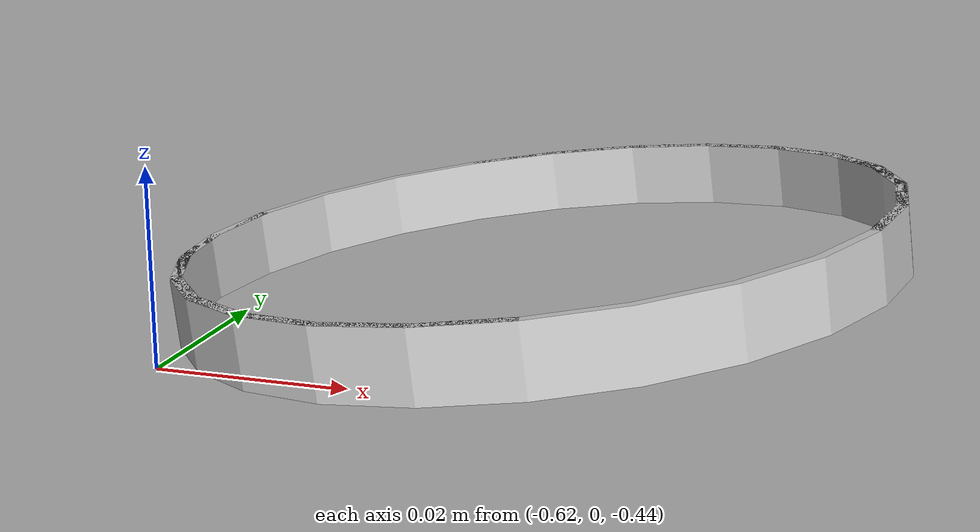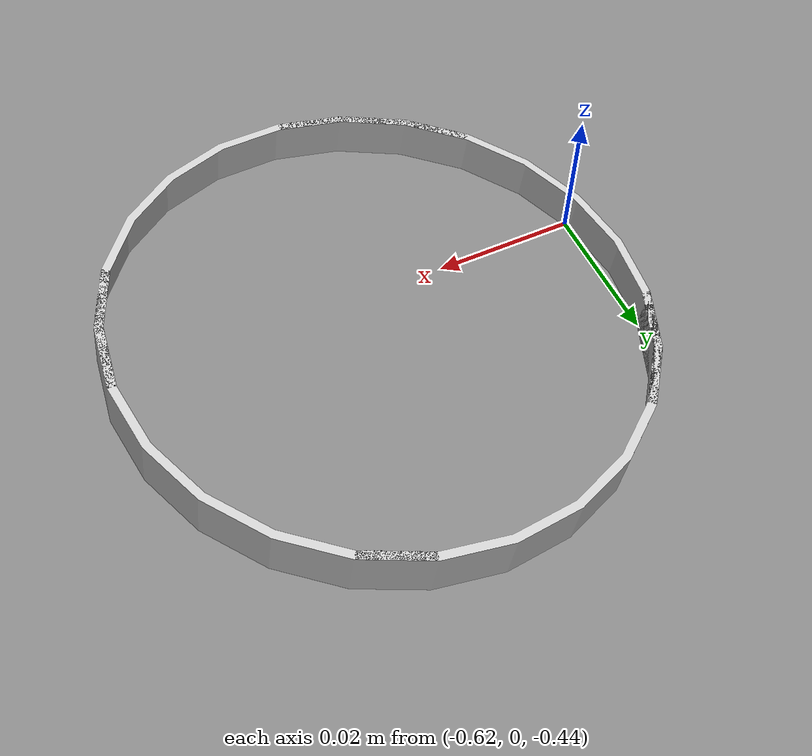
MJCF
<mujoco model="original-88">
  <default>
    <default class="visual">
      <geom group="2" type="mesh" contype="0" conaffinity="0"/>
    </default>
    <default class="collision">
      <geom group="3" type="mesh"/>
    </default>
  </default>
  <asset>
    <material name="material_0_0" specular="0.06666666666666667" shininess="0.03" rgba="0.13333333333333333 0.13333333333333333 0.13333333333333333 1"/>
    <material name="material_1_0" specular="0.06666666666666667" shininess="0.03" rgba="0.8 0.8 0.8 1"/>
    <mesh file="original-88_0.obj"/>
    <mesh file="original-88_1.obj"/>
  </asset>
  <worldbody>
    <body name="original-88">
      <geom mesh="original-88_0" material="material_1_0" class="visual"/>
      <geom mesh="original-88_1" material="material_0_0" class="visual"/>
      <geom mesh="original-88_0" class="collision"/>
      <geom mesh="original-88_1" class="collision"/>
    </body>
  </worldbody>
</mujoco>
